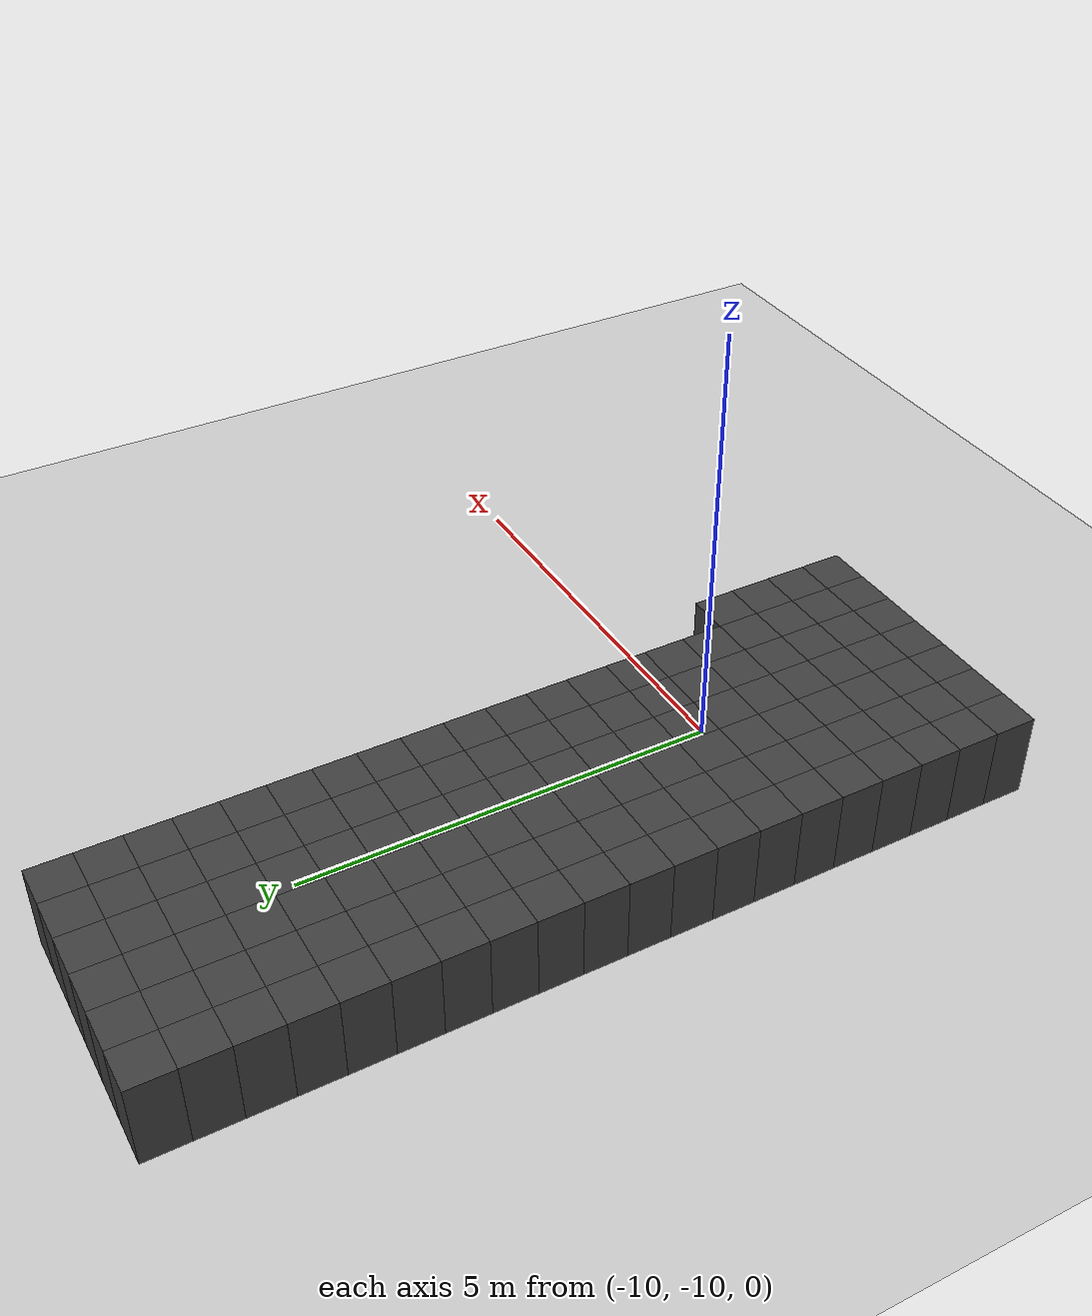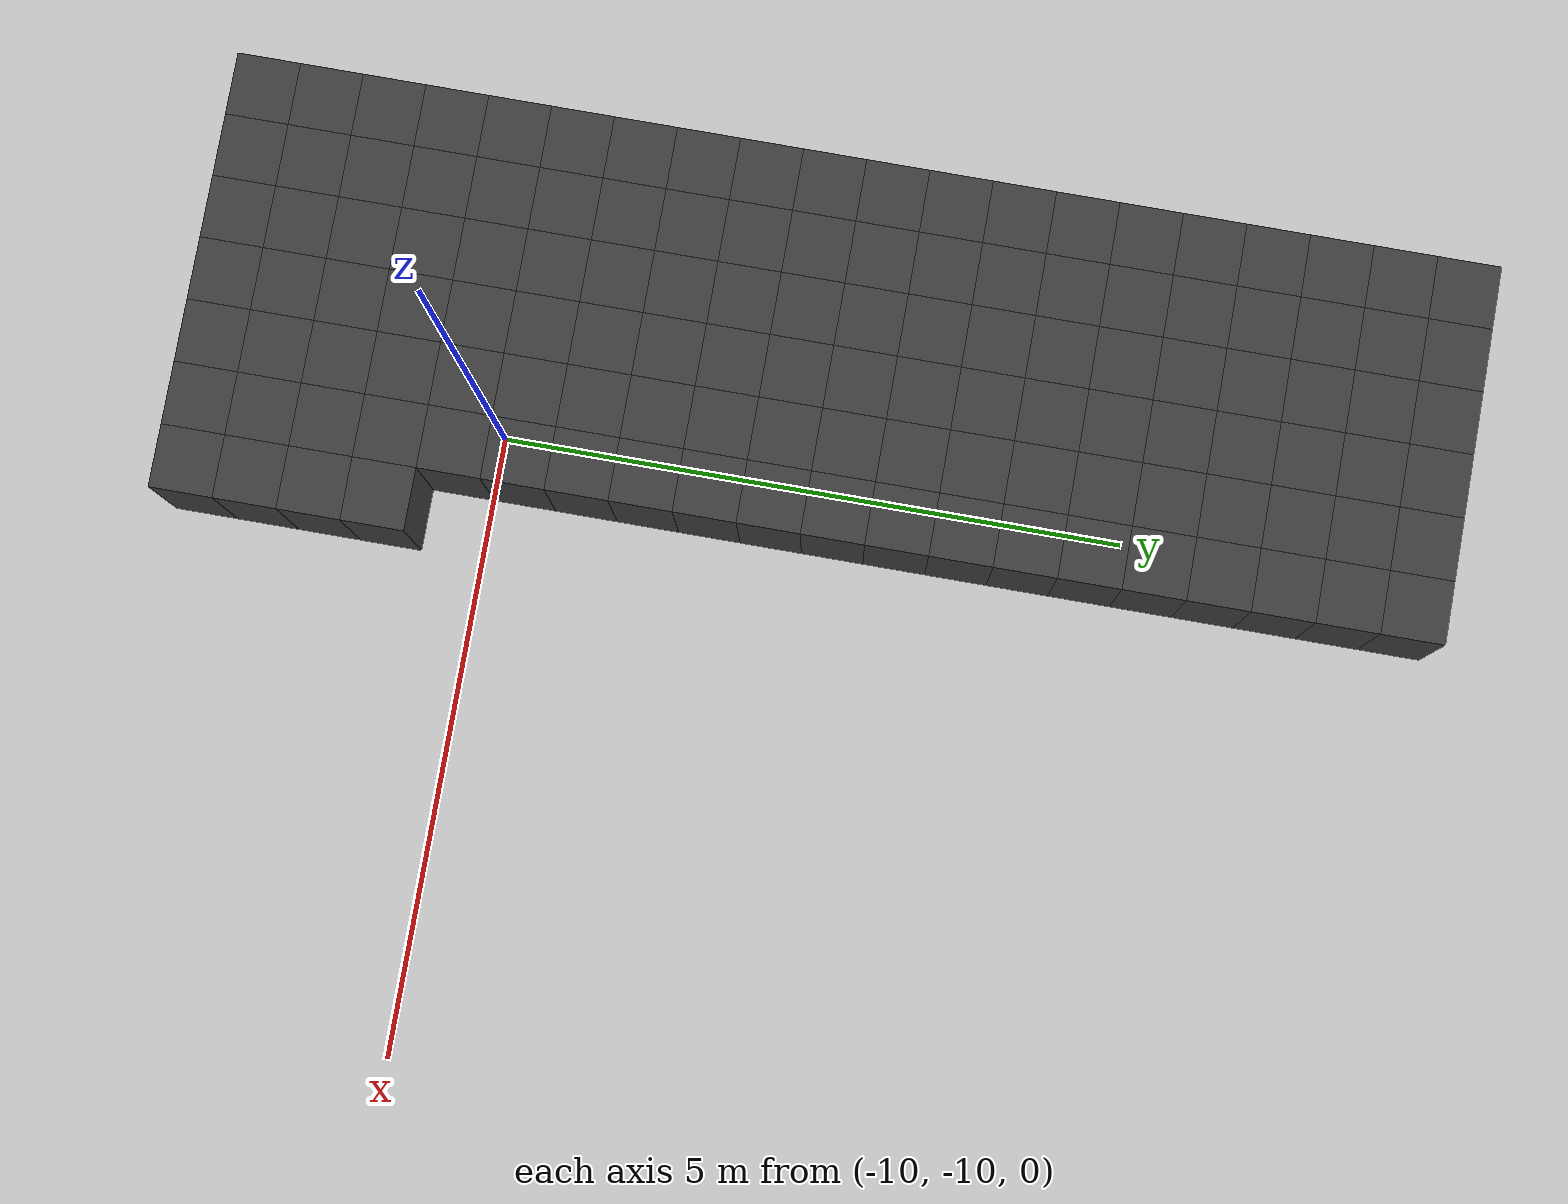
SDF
<sdf version="1.7">
 <world name="map_13994">
  <model name="ground_plane">
   <static>true</static>
   <link name="link">
    <collision name="collision">
     <geometry><plane><normal>0 0 1</normal><size>200 200</size></plane></geometry>
    </collision>
    <visual name="visual">
     <geometry><plane><normal>0 0 1</normal><size>200 200</size></plane></geometry>
     <material><ambient>0.8 0.8 0.8 1</ambient><diffuse>0.8 0.8 0.8 1</diffuse></material>
    </visual>
   </link>
  </model>
  <model name="maze_environment">
   <static>true</static>
   <link name="wall_975">
    <pose>-12.250 -2.750 0.500 0 0 0</pose>
    <collision name="col"><geometry><box><size>0.5 0.5 1.0</size></box></geometry></collision>
    <visual name="vis">
     <geometry><box><size>0.5 0.5 1.0</size></box></geometry>
     <material><ambient>0.15 0.15 0.15 1</ambient><diffuse>0.25 0.25 0.25 1</diffuse></material>
    </visual>
   </link>
   <link name="wall_976">
    <pose>-11.750 -2.750 0.500 0 0 0</pose>
    <collision name="col"><geometry><box><size>0.5 0.5 1.0</size></box></geometry></collision>
    <visual name="vis">
     <geometry><box><size>0.5 0.5 1.0</size></box></geometry>
     <material><ambient>0.15 0.15 0.15 1</ambient><diffuse>0.25 0.25 0.25 1</diffuse></material>
    </visual>
   </link>
   <link name="wall_977">
    <pose>-11.250 -2.750 0.500 0 0 0</pose>
    <collision name="col"><geometry><box><size>0.5 0.5 1.0</size></box></geometry></collision>
    <visual name="vis">
     <geometry><box><size>0.5 0.5 1.0</size></box></geometry>
     <material><ambient>0.15 0.15 0.15 1</ambient><diffuse>0.25 0.25 0.25 1</diffuse></material>
    </visual>
   </link>
   <link name="wall_978">
    <pose>-10.750 -2.750 0.500 0 0 0</pose>
    <collision name="col"><geometry><box><size>0.5 0.5 1.0</size></box></geometry></collision>
    <visual name="vis">
     <geometry><box><size>0.5 0.5 1.0</size></box></geometry>
     <material><ambient>0.15 0.15 0.15 1</ambient><diffuse>0.25 0.25 0.25 1</diffuse></material>
    </visual>
   </link>
   <link name="wall_979">
    <pose>-10.250 -2.750 0.500 0 0 0</pose>
    <collision name="col"><geometry><box><size>0.5 0.5 1.0</size></box></geometry></collision>
    <visual name="vis">
     <geometry><box><size>0.5 0.5 1.0</size></box></geometry>
     <material><ambient>0.15 0.15 0.15 1</ambient><diffuse>0.25 0.25 0.25 1</diffuse></material>
    </visual>
   </link>
   <link name="wall_980">
    <pose>-9.750 -2.750 0.500 0 0 0</pose>
    <collision name="col"><geometry><box><size>0.5 0.5 1.0</size></box></geometry></collision>
    <visual name="vis">
     <geometry><box><size>0.5 0.5 1.0</size></box></geometry>
     <material><ambient>0.15 0.15 0.15 1</ambient><diffuse>0.25 0.25 0.25 1</diffuse></material>
    </visual>
   </link>
   <link name="wall_1016">
    <pose>-12.250 -3.250 0.500 0 0 0</pose>
    <collision name="col"><geometry><box><size>0.5 0.5 1.0</size></box></geometry></collision>
    <visual name="vis">
     <geometry><box><size>0.5 0.5 1.0</size></box></geometry>
     <material><ambient>0.15 0.15 0.15 1</ambient><diffuse>0.25 0.25 0.25 1</diffuse></material>
    </visual>
   </link>
   <link name="wall_1017">
    <pose>-11.750 -3.250 0.500 0 0 0</pose>
    <collision name="col"><geometry><box><size>0.5 0.5 1.0</size></box></geometry></collision>
    <visual name="vis">
     <geometry><box><size>0.5 0.5 1.0</size></box></geometry>
     <material><ambient>0.15 0.15 0.15 1</ambient><diffuse>0.25 0.25 0.25 1</diffuse></material>
    </visual>
   </link>
   <link name="wall_1018">
    <pose>-11.250 -3.250 0.500 0 0 0</pose>
    <collision name="col"><geometry><box><size>0.5 0.5 1.0</size></box></geometry></collision>
    <visual name="vis">
     <geometry><box><size>0.5 0.5 1.0</size></box></geometry>
     <material><ambient>0.15 0.15 0.15 1</ambient><diffuse>0.25 0.25 0.25 1</diffuse></material>
    </visual>
   </link>
   <link name="wall_1019">
    <pose>-10.750 -3.250 0.500 0 0 0</pose>
    <collision name="col"><geometry><box><size>0.5 0.5 1.0</size></box></geometry></collision>
    <visual name="vis">
     <geometry><box><size>0.5 0.5 1.0</size></box></geometry>
     <material><ambient>0.15 0.15 0.15 1</ambient><diffuse>0.25 0.25 0.25 1</diffuse></material>
    </visual>
   </link>
   <link name="wall_1020">
    <pose>-10.250 -3.250 0.500 0 0 0</pose>
    <collision name="col"><geometry><box><size>0.5 0.5 1.0</size></box></geometry></collision>
    <visual name="vis">
     <geometry><box><size>0.5 0.5 1.0</size></box></geometry>
     <material><ambient>0.15 0.15 0.15 1</ambient><diffuse>0.25 0.25 0.25 1</diffuse></material>
    </visual>
   </link>
   <link name="wall_1021">
    <pose>-9.750 -3.250 0.500 0 0 0</pose>
    <collision name="col"><geometry><box><size>0.5 0.5 1.0</size></box></geometry></collision>
    <visual name="vis">
     <geometry><box><size>0.5 0.5 1.0</size></box></geometry>
     <material><ambient>0.15 0.15 0.15 1</ambient><diffuse>0.25 0.25 0.25 1</diffuse></material>
    </visual>
   </link>
   <link name="wall_1057">
    <pose>-12.250 -3.750 0.500 0 0 0</pose>
    <collision name="col"><geometry><box><size>0.5 0.5 1.0</size></box></geometry></collision>
    <visual name="vis">
     <geometry><box><size>0.5 0.5 1.0</size></box></geometry>
     <material><ambient>0.15 0.15 0.15 1</ambient><diffuse>0.25 0.25 0.25 1</diffuse></material>
    </visual>
   </link>
   <link name="wall_1058">
    <pose>-11.750 -3.750 0.500 0 0 0</pose>
    <collision name="col"><geometry><box><size>0.5 0.5 1.0</size></box></geometry></collision>
    <visual name="vis">
     <geometry><box><size>0.5 0.5 1.0</size></box></geometry>
     <material><ambient>0.15 0.15 0.15 1</ambient><diffuse>0.25 0.25 0.25 1</diffuse></material>
    </visual>
   </link>
   <link name="wall_1059">
    <pose>-11.250 -3.750 0.500 0 0 0</pose>
    <collision name="col"><geometry><box><size>0.5 0.5 1.0</size></box></geometry></collision>
    <visual name="vis">
     <geometry><box><size>0.5 0.5 1.0</size></box></geometry>
     <material><ambient>0.15 0.15 0.15 1</ambient><diffuse>0.25 0.25 0.25 1</diffuse></material>
    </visual>
   </link>
   <link name="wall_1060">
    <pose>-10.750 -3.750 0.500 0 0 0</pose>
    <collision name="col"><geometry><box><size>0.5 0.5 1.0</size></box></geometry></collision>
    <visual name="vis">
     <geometry><box><size>0.5 0.5 1.0</size></box></geometry>
     <material><ambient>0.15 0.15 0.15 1</ambient><diffuse>0.25 0.25 0.25 1</diffuse></material>
    </visual>
   </link>
   <link name="wall_1061">
    <pose>-10.250 -3.750 0.500 0 0 0</pose>
    <collision name="col"><geometry><box><size>0.5 0.5 1.0</size></box></geometry></collision>
    <visual name="vis">
     <geometry><box><size>0.5 0.5 1.0</size></box></geometry>
     <material><ambient>0.15 0.15 0.15 1</ambient><diffuse>0.25 0.25 0.25 1</diffuse></material>
    </visual>
   </link>
   <link name="wall_1062">
    <pose>-9.750 -3.750 0.500 0 0 0</pose>
    <collision name="col"><geometry><box><size>0.5 0.5 1.0</size></box></geometry></collision>
    <visual name="vis">
     <geometry><box><size>0.5 0.5 1.0</size></box></geometry>
     <material><ambient>0.15 0.15 0.15 1</ambient><diffuse>0.25 0.25 0.25 1</diffuse></material>
    </visual>
   </link>
   <link name="wall_1092">
    <pose>-12.250 -4.250 0.500 0 0 0</pose>
    <collision name="col"><geometry><box><size>0.5 0.5 1.0</size></box></geometry></collision>
    <visual name="vis">
     <geometry><box><size>0.5 0.5 1.0</size></box></geometry>
     <material><ambient>0.15 0.15 0.15 1</ambient><diffuse>0.25 0.25 0.25 1</diffuse></material>
    </visual>
   </link>
   <link name="wall_1093">
    <pose>-11.750 -4.250 0.500 0 0 0</pose>
    <collision name="col"><geometry><box><size>0.5 0.5 1.0</size></box></geometry></collision>
    <visual name="vis">
     <geometry><box><size>0.5 0.5 1.0</size></box></geometry>
     <material><ambient>0.15 0.15 0.15 1</ambient><diffuse>0.25 0.25 0.25 1</diffuse></material>
    </visual>
   </link>
   <link name="wall_1094">
    <pose>-11.250 -4.250 0.500 0 0 0</pose>
    <collision name="col"><geometry><box><size>0.5 0.5 1.0</size></box></geometry></collision>
    <visual name="vis">
     <geometry><box><size>0.5 0.5 1.0</size></box></geometry>
     <material><ambient>0.15 0.15 0.15 1</ambient><diffuse>0.25 0.25 0.25 1</diffuse></material>
    </visual>
   </link>
   <link name="wall_1095">
    <pose>-10.750 -4.250 0.500 0 0 0</pose>
    <collision name="col"><geometry><box><size>0.5 0.5 1.0</size></box></geometry></collision>
    <visual name="vis">
     <geometry><box><size>0.5 0.5 1.0</size></box></geometry>
     <material><ambient>0.15 0.15 0.15 1</ambient><diffuse>0.25 0.25 0.25 1</diffuse></material>
    </visual>
   </link>
   <link name="wall_1096">
    <pose>-10.250 -4.250 0.500 0 0 0</pose>
    <collision name="col"><geometry><box><size>0.5 0.5 1.0</size></box></geometry></collision>
    <visual name="vis">
     <geometry><box><size>0.5 0.5 1.0</size></box></geometry>
     <material><ambient>0.15 0.15 0.15 1</ambient><diffuse>0.25 0.25 0.25 1</diffuse></material>
    </visual>
   </link>
   <link name="wall_1097">
    <pose>-9.750 -4.250 0.500 0 0 0</pose>
    <collision name="col"><geometry><box><size>0.5 0.5 1.0</size></box></geometry></collision>
    <visual name="vis">
     <geometry><box><size>0.5 0.5 1.0</size></box></geometry>
     <material><ambient>0.15 0.15 0.15 1</ambient><diffuse>0.25 0.25 0.25 1</diffuse></material>
    </visual>
   </link>
   <link name="wall_1127">
    <pose>-12.250 -4.750 0.500 0 0 0</pose>
    <collision name="col"><geometry><box><size>0.5 0.5 1.0</size></box></geometry></collision>
    <visual name="vis">
     <geometry><box><size>0.5 0.5 1.0</size></box></geometry>
     <material><ambient>0.15 0.15 0.15 1</ambient><diffuse>0.25 0.25 0.25 1</diffuse></material>
    </visual>
   </link>
   <link name="wall_1128">
    <pose>-11.750 -4.750 0.500 0 0 0</pose>
    <collision name="col"><geometry><box><size>0.5 0.5 1.0</size></box></geometry></collision>
    <visual name="vis">
     <geometry><box><size>0.5 0.5 1.0</size></box></geometry>
     <material><ambient>0.15 0.15 0.15 1</ambient><diffuse>0.25 0.25 0.25 1</diffuse></material>
    </visual>
   </link>
   <link name="wall_1129">
    <pose>-11.250 -4.750 0.500 0 0 0</pose>
    <collision name="col"><geometry><box><size>0.5 0.5 1.0</size></box></geometry></collision>
    <visual name="vis">
     <geometry><box><size>0.5 0.5 1.0</size></box></geometry>
     <material><ambient>0.15 0.15 0.15 1</ambient><diffuse>0.25 0.25 0.25 1</diffuse></material>
    </visual>
   </link>
   <link name="wall_1130">
    <pose>-10.750 -4.750 0.500 0 0 0</pose>
    <collision name="col"><geometry><box><size>0.5 0.5 1.0</size></box></geometry></collision>
    <visual name="vis">
     <geometry><box><size>0.5 0.5 1.0</size></box></geometry>
     <material><ambient>0.15 0.15 0.15 1</ambient><diffuse>0.25 0.25 0.25 1</diffuse></material>
    </visual>
   </link>
   <link name="wall_1131">
    <pose>-10.250 -4.750 0.500 0 0 0</pose>
    <collision name="col"><geometry><box><size>0.5 0.5 1.0</size></box></geometry></collision>
    <visual name="vis">
     <geometry><box><size>0.5 0.5 1.0</size></box></geometry>
     <material><ambient>0.15 0.15 0.15 1</ambient><diffuse>0.25 0.25 0.25 1</diffuse></material>
    </visual>
   </link>
   <link name="wall_1132">
    <pose>-9.750 -4.750 0.500 0 0 0</pose>
    <collision name="col"><geometry><box><size>0.5 0.5 1.0</size></box></geometry></collision>
    <visual name="vis">
     <geometry><box><size>0.5 0.5 1.0</size></box></geometry>
     <material><ambient>0.15 0.15 0.15 1</ambient><diffuse>0.25 0.25 0.25 1</diffuse></material>
    </visual>
   </link>
   <link name="wall_1157">
    <pose>-12.250 -5.250 0.500 0 0 0</pose>
    <collision name="col"><geometry><box><size>0.5 0.5 1.0</size></box></geometry></collision>
    <visual name="vis">
     <geometry><box><size>0.5 0.5 1.0</size></box></geometry>
     <material><ambient>0.15 0.15 0.15 1</ambient><diffuse>0.25 0.25 0.25 1</diffuse></material>
    </visual>
   </link>
   <link name="wall_1158">
    <pose>-11.750 -5.250 0.500 0 0 0</pose>
    <collision name="col"><geometry><box><size>0.5 0.5 1.0</size></box></geometry></collision>
    <visual name="vis">
     <geometry><box><size>0.5 0.5 1.0</size></box></geometry>
     <material><ambient>0.15 0.15 0.15 1</ambient><diffuse>0.25 0.25 0.25 1</diffuse></material>
    </visual>
   </link>
   <link name="wall_1159">
    <pose>-11.250 -5.250 0.500 0 0 0</pose>
    <collision name="col"><geometry><box><size>0.5 0.5 1.0</size></box></geometry></collision>
    <visual name="vis">
     <geometry><box><size>0.5 0.5 1.0</size></box></geometry>
     <material><ambient>0.15 0.15 0.15 1</ambient><diffuse>0.25 0.25 0.25 1</diffuse></material>
    </visual>
   </link>
   <link name="wall_1160">
    <pose>-10.750 -5.250 0.500 0 0 0</pose>
    <collision name="col"><geometry><box><size>0.5 0.5 1.0</size></box></geometry></collision>
    <visual name="vis">
     <geometry><box><size>0.5 0.5 1.0</size></box></geometry>
     <material><ambient>0.15 0.15 0.15 1</ambient><diffuse>0.25 0.25 0.25 1</diffuse></material>
    </visual>
   </link>
   <link name="wall_1161">
    <pose>-10.250 -5.250 0.500 0 0 0</pose>
    <collision name="col"><geometry><box><size>0.5 0.5 1.0</size></box></geometry></collision>
    <visual name="vis">
     <geometry><box><size>0.5 0.5 1.0</size></box></geometry>
     <material><ambient>0.15 0.15 0.15 1</ambient><diffuse>0.25 0.25 0.25 1</diffuse></material>
    </visual>
   </link>
   <link name="wall_1162">
    <pose>-9.750 -5.250 0.500 0 0 0</pose>
    <collision name="col"><geometry><box><size>0.5 0.5 1.0</size></box></geometry></collision>
    <visual name="vis">
     <geometry><box><size>0.5 0.5 1.0</size></box></geometry>
     <material><ambient>0.15 0.15 0.15 1</ambient><diffuse>0.25 0.25 0.25 1</diffuse></material>
    </visual>
   </link>
   <link name="wall_1192">
    <pose>-12.250 -5.750 0.500 0 0 0</pose>
    <collision name="col"><geometry><box><size>0.5 0.5 1.0</size></box></geometry></collision>
    <visual name="vis">
     <geometry><box><size>0.5 0.5 1.0</size></box></geometry>
     <material><ambient>0.15 0.15 0.15 1</ambient><diffuse>0.25 0.25 0.25 1</diffuse></material>
    </visual>
   </link>
   <link name="wall_1193">
    <pose>-11.750 -5.750 0.500 0 0 0</pose>
    <collision name="col"><geometry><box><size>0.5 0.5 1.0</size></box></geometry></collision>
    <visual name="vis">
     <geometry><box><size>0.5 0.5 1.0</size></box></geometry>
     <material><ambient>0.15 0.15 0.15 1</ambient><diffuse>0.25 0.25 0.25 1</diffuse></material>
    </visual>
   </link>
   <link name="wall_1194">
    <pose>-11.250 -5.750 0.500 0 0 0</pose>
    <collision name="col"><geometry><box><size>0.5 0.5 1.0</size></box></geometry></collision>
    <visual name="vis">
     <geometry><box><size>0.5 0.5 1.0</size></box></geometry>
     <material><ambient>0.15 0.15 0.15 1</ambient><diffuse>0.25 0.25 0.25 1</diffuse></material>
    </visual>
   </link>
   <link name="wall_1195">
    <pose>-10.750 -5.750 0.500 0 0 0</pose>
    <collision name="col"><geometry><box><size>0.5 0.5 1.0</size></box></geometry></collision>
    <visual name="vis">
     <geometry><box><size>0.5 0.5 1.0</size></box></geometry>
     <material><ambient>0.15 0.15 0.15 1</ambient><diffuse>0.25 0.25 0.25 1</diffuse></material>
    </visual>
   </link>
   <link name="wall_1196">
    <pose>-10.250 -5.750 0.500 0 0 0</pose>
    <collision name="col"><geometry><box><size>0.5 0.5 1.0</size></box></geometry></collision>
    <visual name="vis">
     <geometry><box><size>0.5 0.5 1.0</size></box></geometry>
     <material><ambient>0.15 0.15 0.15 1</ambient><diffuse>0.25 0.25 0.25 1</diffuse></material>
    </visual>
   </link>
   <link name="wall_1197">
    <pose>-9.750 -5.750 0.500 0 0 0</pose>
    <collision name="col"><geometry><box><size>0.5 0.5 1.0</size></box></geometry></collision>
    <visual name="vis">
     <geometry><box><size>0.5 0.5 1.0</size></box></geometry>
     <material><ambient>0.15 0.15 0.15 1</ambient><diffuse>0.25 0.25 0.25 1</diffuse></material>
    </visual>
   </link>
   <link name="wall_1225">
    <pose>-12.250 -6.250 0.500 0 0 0</pose>
    <collision name="col"><geometry><box><size>0.5 0.5 1.0</size></box></geometry></collision>
    <visual name="vis">
     <geometry><box><size>0.5 0.5 1.0</size></box></geometry>
     <material><ambient>0.15 0.15 0.15 1</ambient><diffuse>0.25 0.25 0.25 1</diffuse></material>
    </visual>
   </link>
   <link name="wall_1226">
    <pose>-11.750 -6.250 0.500 0 0 0</pose>
    <collision name="col"><geometry><box><size>0.5 0.5 1.0</size></box></geometry></collision>
    <visual name="vis">
     <geometry><box><size>0.5 0.5 1.0</size></box></geometry>
     <material><ambient>0.15 0.15 0.15 1</ambient><diffuse>0.25 0.25 0.25 1</diffuse></material>
    </visual>
   </link>
   <link name="wall_1227">
    <pose>-11.250 -6.250 0.500 0 0 0</pose>
    <collision name="col"><geometry><box><size>0.5 0.5 1.0</size></box></geometry></collision>
    <visual name="vis">
     <geometry><box><size>0.5 0.5 1.0</size></box></geometry>
     <material><ambient>0.15 0.15 0.15 1</ambient><diffuse>0.25 0.25 0.25 1</diffuse></material>
    </visual>
   </link>
   <link name="wall_1228">
    <pose>-10.750 -6.250 0.500 0 0 0</pose>
    <collision name="col"><geometry><box><size>0.5 0.5 1.0</size></box></geometry></collision>
    <visual name="vis">
     <geometry><box><size>0.5 0.5 1.0</size></box></geometry>
     <material><ambient>0.15 0.15 0.15 1</ambient><diffuse>0.25 0.25 0.25 1</diffuse></material>
    </visual>
   </link>
   <link name="wall_1229">
    <pose>-10.250 -6.250 0.500 0 0 0</pose>
    <collision name="col"><geometry><box><size>0.5 0.5 1.0</size></box></geometry></collision>
    <visual name="vis">
     <geometry><box><size>0.5 0.5 1.0</size></box></geometry>
     <material><ambient>0.15 0.15 0.15 1</ambient><diffuse>0.25 0.25 0.25 1</diffuse></material>
    </visual>
   </link>
   <link name="wall_1230">
    <pose>-9.750 -6.250 0.500 0 0 0</pose>
    <collision name="col"><geometry><box><size>0.5 0.5 1.0</size></box></geometry></collision>
    <visual name="vis">
     <geometry><box><size>0.5 0.5 1.0</size></box></geometry>
     <material><ambient>0.15 0.15 0.15 1</ambient><diffuse>0.25 0.25 0.25 1</diffuse></material>
    </visual>
   </link>
   <link name="wall_1258">
    <pose>-12.250 -6.750 0.500 0 0 0</pose>
    <collision name="col"><geometry><box><size>0.5 0.5 1.0</size></box></geometry></collision>
    <visual name="vis">
     <geometry><box><size>0.5 0.5 1.0</size></box></geometry>
     <material><ambient>0.15 0.15 0.15 1</ambient><diffuse>0.25 0.25 0.25 1</diffuse></material>
    </visual>
   </link>
   <link name="wall_1259">
    <pose>-11.750 -6.750 0.500 0 0 0</pose>
    <collision name="col"><geometry><box><size>0.5 0.5 1.0</size></box></geometry></collision>
    <visual name="vis">
     <geometry><box><size>0.5 0.5 1.0</size></box></geometry>
     <material><ambient>0.15 0.15 0.15 1</ambient><diffuse>0.25 0.25 0.25 1</diffuse></material>
    </visual>
   </link>
   <link name="wall_1260">
    <pose>-11.250 -6.750 0.500 0 0 0</pose>
    <collision name="col"><geometry><box><size>0.5 0.5 1.0</size></box></geometry></collision>
    <visual name="vis">
     <geometry><box><size>0.5 0.5 1.0</size></box></geometry>
     <material><ambient>0.15 0.15 0.15 1</ambient><diffuse>0.25 0.25 0.25 1</diffuse></material>
    </visual>
   </link>
   <link name="wall_1261">
    <pose>-10.750 -6.750 0.500 0 0 0</pose>
    <collision name="col"><geometry><box><size>0.5 0.5 1.0</size></box></geometry></collision>
    <visual name="vis">
     <geometry><box><size>0.5 0.5 1.0</size></box></geometry>
     <material><ambient>0.15 0.15 0.15 1</ambient><diffuse>0.25 0.25 0.25 1</diffuse></material>
    </visual>
   </link>
   <link name="wall_1262">
    <pose>-10.250 -6.750 0.500 0 0 0</pose>
    <collision name="col"><geometry><box><size>0.5 0.5 1.0</size></box></geometry></collision>
    <visual name="vis">
     <geometry><box><size>0.5 0.5 1.0</size></box></geometry>
     <material><ambient>0.15 0.15 0.15 1</ambient><diffuse>0.25 0.25 0.25 1</diffuse></material>
    </visual>
   </link>
   <link name="wall_1263">
    <pose>-9.750 -6.750 0.500 0 0 0</pose>
    <collision name="col"><geometry><box><size>0.5 0.5 1.0</size></box></geometry></collision>
    <visual name="vis">
     <geometry><box><size>0.5 0.5 1.0</size></box></geometry>
     <material><ambient>0.15 0.15 0.15 1</ambient><diffuse>0.25 0.25 0.25 1</diffuse></material>
    </visual>
   </link>
   <link name="wall_1295">
    <pose>-12.250 -7.250 0.500 0 0 0</pose>
    <collision name="col"><geometry><box><size>0.5 0.5 1.0</size></box></geometry></collision>
    <visual name="vis">
     <geometry><box><size>0.5 0.5 1.0</size></box></geometry>
     <material><ambient>0.15 0.15 0.15 1</ambient><diffuse>0.25 0.25 0.25 1</diffuse></material>
    </visual>
   </link>
   <link name="wall_1296">
    <pose>-11.750 -7.250 0.500 0 0 0</pose>
    <collision name="col"><geometry><box><size>0.5 0.5 1.0</size></box></geometry></collision>
    <visual name="vis">
     <geometry><box><size>0.5 0.5 1.0</size></box></geometry>
     <material><ambient>0.15 0.15 0.15 1</ambient><diffuse>0.25 0.25 0.25 1</diffuse></material>
    </visual>
   </link>
   <link name="wall_1297">
    <pose>-11.250 -7.250 0.500 0 0 0</pose>
    <collision name="col"><geometry><box><size>0.5 0.5 1.0</size></box></geometry></collision>
    <visual name="vis">
     <geometry><box><size>0.5 0.5 1.0</size></box></geometry>
     <material><ambient>0.15 0.15 0.15 1</ambient><diffuse>0.25 0.25 0.25 1</diffuse></material>
    </visual>
   </link>
   <link name="wall_1298">
    <pose>-10.750 -7.250 0.500 0 0 0</pose>
    <collision name="col"><geometry><box><size>0.5 0.5 1.0</size></box></geometry></collision>
    <visual name="vis">
     <geometry><box><size>0.5 0.5 1.0</size></box></geometry>
     <material><ambient>0.15 0.15 0.15 1</ambient><diffuse>0.25 0.25 0.25 1</diffuse></material>
    </visual>
   </link>
   <link name="wall_1299">
    <pose>-10.250 -7.250 0.500 0 0 0</pose>
    <collision name="col"><geometry><box><size>0.5 0.5 1.0</size></box></geometry></collision>
    <visual name="vis">
     <geometry><box><size>0.5 0.5 1.0</size></box></geometry>
     <material><ambient>0.15 0.15 0.15 1</ambient><diffuse>0.25 0.25 0.25 1</diffuse></material>
    </visual>
   </link>
   <link name="wall_1300">
    <pose>-9.750 -7.250 0.500 0 0 0</pose>
    <collision name="col"><geometry><box><size>0.5 0.5 1.0</size></box></geometry></collision>
    <visual name="vis">
     <geometry><box><size>0.5 0.5 1.0</size></box></geometry>
     <material><ambient>0.15 0.15 0.15 1</ambient><diffuse>0.25 0.25 0.25 1</diffuse></material>
    </visual>
   </link>
   <link name="wall_1332">
    <pose>-12.250 -7.750 0.500 0 0 0</pose>
    <collision name="col"><geometry><box><size>0.5 0.5 1.0</size></box></geometry></collision>
    <visual name="vis">
     <geometry><box><size>0.5 0.5 1.0</size></box></geometry>
     <material><ambient>0.15 0.15 0.15 1</ambient><diffuse>0.25 0.25 0.25 1</diffuse></material>
    </visual>
   </link>
   <link name="wall_1333">
    <pose>-11.750 -7.750 0.500 0 0 0</pose>
    <collision name="col"><geometry><box><size>0.5 0.5 1.0</size></box></geometry></collision>
    <visual name="vis">
     <geometry><box><size>0.5 0.5 1.0</size></box></geometry>
     <material><ambient>0.15 0.15 0.15 1</ambient><diffuse>0.25 0.25 0.25 1</diffuse></material>
    </visual>
   </link>
   <link name="wall_1334">
    <pose>-11.250 -7.750 0.500 0 0 0</pose>
    <collision name="col"><geometry><box><size>0.5 0.5 1.0</size></box></geometry></collision>
    <visual name="vis">
     <geometry><box><size>0.5 0.5 1.0</size></box></geometry>
     <material><ambient>0.15 0.15 0.15 1</ambient><diffuse>0.25 0.25 0.25 1</diffuse></material>
    </visual>
   </link>
   <link name="wall_1335">
    <pose>-10.750 -7.750 0.500 0 0 0</pose>
    <collision name="col"><geometry><box><size>0.5 0.5 1.0</size></box></geometry></collision>
    <visual name="vis">
     <geometry><box><size>0.5 0.5 1.0</size></box></geometry>
     <material><ambient>0.15 0.15 0.15 1</ambient><diffuse>0.25 0.25 0.25 1</diffuse></material>
    </visual>
   </link>
   <link name="wall_1336">
    <pose>-10.250 -7.750 0.500 0 0 0</pose>
    <collision name="col"><geometry><box><size>0.5 0.5 1.0</size></box></geometry></collision>
    <visual name="vis">
     <geometry><box><size>0.5 0.5 1.0</size></box></geometry>
     <material><ambient>0.15 0.15 0.15 1</ambient><diffuse>0.25 0.25 0.25 1</diffuse></material>
    </visual>
   </link>
   <link name="wall_1337">
    <pose>-9.750 -7.750 0.500 0 0 0</pose>
    <collision name="col"><geometry><box><size>0.5 0.5 1.0</size></box></geometry></collision>
    <visual name="vis">
     <geometry><box><size>0.5 0.5 1.0</size></box></geometry>
     <material><ambient>0.15 0.15 0.15 1</ambient><diffuse>0.25 0.25 0.25 1</diffuse></material>
    </visual>
   </link>
   <link name="wall_1371">
    <pose>-12.250 -8.250 0.500 0 0 0</pose>
    <collision name="col"><geometry><box><size>0.5 0.5 1.0</size></box></geometry></collision>
    <visual name="vis">
     <geometry><box><size>0.5 0.5 1.0</size></box></geometry>
     <material><ambient>0.15 0.15 0.15 1</ambient><diffuse>0.25 0.25 0.25 1</diffuse></material>
    </visual>
   </link>
   <link name="wall_1372">
    <pose>-11.750 -8.250 0.500 0 0 0</pose>
    <collision name="col"><geometry><box><size>0.5 0.5 1.0</size></box></geometry></collision>
    <visual name="vis">
     <geometry><box><size>0.5 0.5 1.0</size></box></geometry>
     <material><ambient>0.15 0.15 0.15 1</ambient><diffuse>0.25 0.25 0.25 1</diffuse></material>
    </visual>
   </link>
   <link name="wall_1373">
    <pose>-11.250 -8.250 0.500 0 0 0</pose>
    <collision name="col"><geometry><box><size>0.5 0.5 1.0</size></box></geometry></collision>
    <visual name="vis">
     <geometry><box><size>0.5 0.5 1.0</size></box></geometry>
     <material><ambient>0.15 0.15 0.15 1</ambient><diffuse>0.25 0.25 0.25 1</diffuse></material>
    </visual>
   </link>
   <link name="wall_1374">
    <pose>-10.750 -8.250 0.500 0 0 0</pose>
    <collision name="col"><geometry><box><size>0.5 0.5 1.0</size></box></geometry></collision>
    <visual name="vis">
     <geometry><box><size>0.5 0.5 1.0</size></box></geometry>
     <material><ambient>0.15 0.15 0.15 1</ambient><diffuse>0.25 0.25 0.25 1</diffuse></material>
    </visual>
   </link>
   <link name="wall_1375">
    <pose>-10.250 -8.250 0.500 0 0 0</pose>
    <collision name="col"><geometry><box><size>0.5 0.5 1.0</size></box></geometry></collision>
    <visual name="vis">
     <geometry><box><size>0.5 0.5 1.0</size></box></geometry>
     <material><ambient>0.15 0.15 0.15 1</ambient><diffuse>0.25 0.25 0.25 1</diffuse></material>
    </visual>
   </link>
   <link name="wall_1376">
    <pose>-9.750 -8.250 0.500 0 0 0</pose>
    <collision name="col"><geometry><box><size>0.5 0.5 1.0</size></box></geometry></collision>
    <visual name="vis">
     <geometry><box><size>0.5 0.5 1.0</size></box></geometry>
     <material><ambient>0.15 0.15 0.15 1</ambient><diffuse>0.25 0.25 0.25 1</diffuse></material>
    </visual>
   </link>
   <link name="wall_1414">
    <pose>-12.250 -8.750 0.500 0 0 0</pose>
    <collision name="col"><geometry><box><size>0.5 0.5 1.0</size></box></geometry></collision>
    <visual name="vis">
     <geometry><box><size>0.5 0.5 1.0</size></box></geometry>
     <material><ambient>0.15 0.15 0.15 1</ambient><diffuse>0.25 0.25 0.25 1</diffuse></material>
    </visual>
   </link>
   <link name="wall_1415">
    <pose>-11.750 -8.750 0.500 0 0 0</pose>
    <collision name="col"><geometry><box><size>0.5 0.5 1.0</size></box></geometry></collision>
    <visual name="vis">
     <geometry><box><size>0.5 0.5 1.0</size></box></geometry>
     <material><ambient>0.15 0.15 0.15 1</ambient><diffuse>0.25 0.25 0.25 1</diffuse></material>
    </visual>
   </link>
   <link name="wall_1416">
    <pose>-11.250 -8.750 0.500 0 0 0</pose>
    <collision name="col"><geometry><box><size>0.5 0.5 1.0</size></box></geometry></collision>
    <visual name="vis">
     <geometry><box><size>0.5 0.5 1.0</size></box></geometry>
     <material><ambient>0.15 0.15 0.15 1</ambient><diffuse>0.25 0.25 0.25 1</diffuse></material>
    </visual>
   </link>
   <link name="wall_1417">
    <pose>-10.750 -8.750 0.500 0 0 0</pose>
    <collision name="col"><geometry><box><size>0.5 0.5 1.0</size></box></geometry></collision>
    <visual name="vis">
     <geometry><box><size>0.5 0.5 1.0</size></box></geometry>
     <material><ambient>0.15 0.15 0.15 1</ambient><diffuse>0.25 0.25 0.25 1</diffuse></material>
    </visual>
   </link>
   <link name="wall_1418">
    <pose>-10.250 -8.750 0.500 0 0 0</pose>
    <collision name="col"><geometry><box><size>0.5 0.5 1.0</size></box></geometry></collision>
    <visual name="vis">
     <geometry><box><size>0.5 0.5 1.0</size></box></geometry>
     <material><ambient>0.15 0.15 0.15 1</ambient><diffuse>0.25 0.25 0.25 1</diffuse></material>
    </visual>
   </link>
   <link name="wall_1419">
    <pose>-9.750 -8.750 0.500 0 0 0</pose>
    <collision name="col"><geometry><box><size>0.5 0.5 1.0</size></box></geometry></collision>
    <visual name="vis">
     <geometry><box><size>0.5 0.5 1.0</size></box></geometry>
     <material><ambient>0.15 0.15 0.15 1</ambient><diffuse>0.25 0.25 0.25 1</diffuse></material>
    </visual>
   </link>
   <link name="wall_1457">
    <pose>-12.250 -9.250 0.500 0 0 0</pose>
    <collision name="col"><geometry><box><size>0.5 0.5 1.0</size></box></geometry></collision>
    <visual name="vis">
     <geometry><box><size>0.5 0.5 1.0</size></box></geometry>
     <material><ambient>0.15 0.15 0.15 1</ambient><diffuse>0.25 0.25 0.25 1</diffuse></material>
    </visual>
   </link>
   <link name="wall_1458">
    <pose>-11.750 -9.250 0.500 0 0 0</pose>
    <collision name="col"><geometry><box><size>0.5 0.5 1.0</size></box></geometry></collision>
    <visual name="vis">
     <geometry><box><size>0.5 0.5 1.0</size></box></geometry>
     <material><ambient>0.15 0.15 0.15 1</ambient><diffuse>0.25 0.25 0.25 1</diffuse></material>
    </visual>
   </link>
   <link name="wall_1459">
    <pose>-11.250 -9.250 0.500 0 0 0</pose>
    <collision name="col"><geometry><box><size>0.5 0.5 1.0</size></box></geometry></collision>
    <visual name="vis">
     <geometry><box><size>0.5 0.5 1.0</size></box></geometry>
     <material><ambient>0.15 0.15 0.15 1</ambient><diffuse>0.25 0.25 0.25 1</diffuse></material>
    </visual>
   </link>
   <link name="wall_1460">
    <pose>-10.750 -9.250 0.500 0 0 0</pose>
    <collision name="col"><geometry><box><size>0.5 0.5 1.0</size></box></geometry></collision>
    <visual name="vis">
     <geometry><box><size>0.5 0.5 1.0</size></box></geometry>
     <material><ambient>0.15 0.15 0.15 1</ambient><diffuse>0.25 0.25 0.25 1</diffuse></material>
    </visual>
   </link>
   <link name="wall_1461">
    <pose>-10.250 -9.250 0.500 0 0 0</pose>
    <collision name="col"><geometry><box><size>0.5 0.5 1.0</size></box></geometry></collision>
    <visual name="vis">
     <geometry><box><size>0.5 0.5 1.0</size></box></geometry>
     <material><ambient>0.15 0.15 0.15 1</ambient><diffuse>0.25 0.25 0.25 1</diffuse></material>
    </visual>
   </link>
   <link name="wall_1462">
    <pose>-9.750 -9.250 0.500 0 0 0</pose>
    <collision name="col"><geometry><box><size>0.5 0.5 1.0</size></box></geometry></collision>
    <visual name="vis">
     <geometry><box><size>0.5 0.5 1.0</size></box></geometry>
     <material><ambient>0.15 0.15 0.15 1</ambient><diffuse>0.25 0.25 0.25 1</diffuse></material>
    </visual>
   </link>
   <link name="wall_1500">
    <pose>-12.250 -9.750 0.500 0 0 0</pose>
    <collision name="col"><geometry><box><size>0.5 0.5 1.0</size></box></geometry></collision>
    <visual name="vis">
     <geometry><box><size>0.5 0.5 1.0</size></box></geometry>
     <material><ambient>0.15 0.15 0.15 1</ambient><diffuse>0.25 0.25 0.25 1</diffuse></material>
    </visual>
   </link>
   <link name="wall_1501">
    <pose>-11.750 -9.750 0.500 0 0 0</pose>
    <collision name="col"><geometry><box><size>0.5 0.5 1.0</size></box></geometry></collision>
    <visual name="vis">
     <geometry><box><size>0.5 0.5 1.0</size></box></geometry>
     <material><ambient>0.15 0.15 0.15 1</ambient><diffuse>0.25 0.25 0.25 1</diffuse></material>
    </visual>
   </link>
   <link name="wall_1502">
    <pose>-11.250 -9.750 0.500 0 0 0</pose>
    <collision name="col"><geometry><box><size>0.5 0.5 1.0</size></box></geometry></collision>
    <visual name="vis">
     <geometry><box><size>0.5 0.5 1.0</size></box></geometry>
     <material><ambient>0.15 0.15 0.15 1</ambient><diffuse>0.25 0.25 0.25 1</diffuse></material>
    </visual>
   </link>
   <link name="wall_1503">
    <pose>-10.750 -9.750 0.500 0 0 0</pose>
    <collision name="col"><geometry><box><size>0.5 0.5 1.0</size></box></geometry></collision>
    <visual name="vis">
     <geometry><box><size>0.5 0.5 1.0</size></box></geometry>
     <material><ambient>0.15 0.15 0.15 1</ambient><diffuse>0.25 0.25 0.25 1</diffuse></material>
    </visual>
   </link>
   <link name="wall_1504">
    <pose>-10.250 -9.750 0.500 0 0 0</pose>
    <collision name="col"><geometry><box><size>0.5 0.5 1.0</size></box></geometry></collision>
    <visual name="vis">
     <geometry><box><size>0.5 0.5 1.0</size></box></geometry>
     <material><ambient>0.15 0.15 0.15 1</ambient><diffuse>0.25 0.25 0.25 1</diffuse></material>
    </visual>
   </link>
   <link name="wall_1505">
    <pose>-9.750 -9.750 0.500 0 0 0</pose>
    <collision name="col"><geometry><box><size>0.5 0.5 1.0</size></box></geometry></collision>
    <visual name="vis">
     <geometry><box><size>0.5 0.5 1.0</size></box></geometry>
     <material><ambient>0.15 0.15 0.15 1</ambient><diffuse>0.25 0.25 0.25 1</diffuse></material>
    </visual>
   </link>
   <link name="wall_1536">
    <pose>-12.250 -10.250 0.500 0 0 0</pose>
    <collision name="col"><geometry><box><size>0.5 0.5 1.0</size></box></geometry></collision>
    <visual name="vis">
     <geometry><box><size>0.5 0.5 1.0</size></box></geometry>
     <material><ambient>0.15 0.15 0.15 1</ambient><diffuse>0.25 0.25 0.25 1</diffuse></material>
    </visual>
   </link>
   <link name="wall_1537">
    <pose>-11.750 -10.250 0.500 0 0 0</pose>
    <collision name="col"><geometry><box><size>0.5 0.5 1.0</size></box></geometry></collision>
    <visual name="vis">
     <geometry><box><size>0.5 0.5 1.0</size></box></geometry>
     <material><ambient>0.15 0.15 0.15 1</ambient><diffuse>0.25 0.25 0.25 1</diffuse></material>
    </visual>
   </link>
   <link name="wall_1538">
    <pose>-11.250 -10.250 0.500 0 0 0</pose>
    <collision name="col"><geometry><box><size>0.5 0.5 1.0</size></box></geometry></collision>
    <visual name="vis">
     <geometry><box><size>0.5 0.5 1.0</size></box></geometry>
     <material><ambient>0.15 0.15 0.15 1</ambient><diffuse>0.25 0.25 0.25 1</diffuse></material>
    </visual>
   </link>
   <link name="wall_1539">
    <pose>-10.750 -10.250 0.500 0 0 0</pose>
    <collision name="col"><geometry><box><size>0.5 0.5 1.0</size></box></geometry></collision>
    <visual name="vis">
     <geometry><box><size>0.5 0.5 1.0</size></box></geometry>
     <material><ambient>0.15 0.15 0.15 1</ambient><diffuse>0.25 0.25 0.25 1</diffuse></material>
    </visual>
   </link>
   <link name="wall_1540">
    <pose>-10.250 -10.250 0.500 0 0 0</pose>
    <collision name="col"><geometry><box><size>0.5 0.5 1.0</size></box></geometry></collision>
    <visual name="vis">
     <geometry><box><size>0.5 0.5 1.0</size></box></geometry>
     <material><ambient>0.15 0.15 0.15 1</ambient><diffuse>0.25 0.25 0.25 1</diffuse></material>
    </visual>
   </link>
   <link name="wall_1541">
    <pose>-9.750 -10.250 0.500 0 0 0</pose>
    <collision name="col"><geometry><box><size>0.5 0.5 1.0</size></box></geometry></collision>
    <visual name="vis">
     <geometry><box><size>0.5 0.5 1.0</size></box></geometry>
     <material><ambient>0.15 0.15 0.15 1</ambient><diffuse>0.25 0.25 0.25 1</diffuse></material>
    </visual>
   </link>
   <link name="wall_1572">
    <pose>-12.250 -10.750 0.500 0 0 0</pose>
    <collision name="col"><geometry><box><size>0.5 0.5 1.0</size></box></geometry></collision>
    <visual name="vis">
     <geometry><box><size>0.5 0.5 1.0</size></box></geometry>
     <material><ambient>0.15 0.15 0.15 1</ambient><diffuse>0.25 0.25 0.25 1</diffuse></material>
    </visual>
   </link>
   <link name="wall_1573">
    <pose>-11.750 -10.750 0.500 0 0 0</pose>
    <collision name="col"><geometry><box><size>0.5 0.5 1.0</size></box></geometry></collision>
    <visual name="vis">
     <geometry><box><size>0.5 0.5 1.0</size></box></geometry>
     <material><ambient>0.15 0.15 0.15 1</ambient><diffuse>0.25 0.25 0.25 1</diffuse></material>
    </visual>
   </link>
   <link name="wall_1574">
    <pose>-11.250 -10.750 0.500 0 0 0</pose>
    <collision name="col"><geometry><box><size>0.5 0.5 1.0</size></box></geometry></collision>
    <visual name="vis">
     <geometry><box><size>0.5 0.5 1.0</size></box></geometry>
     <material><ambient>0.15 0.15 0.15 1</ambient><diffuse>0.25 0.25 0.25 1</diffuse></material>
    </visual>
   </link>
   <link name="wall_1575">
    <pose>-10.750 -10.750 0.500 0 0 0</pose>
    <collision name="col"><geometry><box><size>0.5 0.5 1.0</size></box></geometry></collision>
    <visual name="vis">
     <geometry><box><size>0.5 0.5 1.0</size></box></geometry>
     <material><ambient>0.15 0.15 0.15 1</ambient><diffuse>0.25 0.25 0.25 1</diffuse></material>
    </visual>
   </link>
   <link name="wall_1576">
    <pose>-10.250 -10.750 0.500 0 0 0</pose>
    <collision name="col"><geometry><box><size>0.5 0.5 1.0</size></box></geometry></collision>
    <visual name="vis">
     <geometry><box><size>0.5 0.5 1.0</size></box></geometry>
     <material><ambient>0.15 0.15 0.15 1</ambient><diffuse>0.25 0.25 0.25 1</diffuse></material>
    </visual>
   </link>
   <link name="wall_1577">
    <pose>-9.750 -10.750 0.500 0 0 0</pose>
    <collision name="col"><geometry><box><size>0.5 0.5 1.0</size></box></geometry></collision>
    <visual name="vis">
     <geometry><box><size>0.5 0.5 1.0</size></box></geometry>
     <material><ambient>0.15 0.15 0.15 1</ambient><diffuse>0.25 0.25 0.25 1</diffuse></material>
    </visual>
   </link>
   <link name="wall_1578">
    <pose>-9.250 -10.750 0.500 0 0 0</pose>
    <collision name="col"><geometry><box><size>0.5 0.5 1.0</size></box></geometry></collision>
    <visual name="vis">
     <geometry><box><size>0.5 0.5 1.0</size></box></geometry>
     <material><ambient>0.15 0.15 0.15 1</ambient><diffuse>0.25 0.25 0.25 1</diffuse></material>
    </visual>
   </link>
   <link name="wall_1610">
    <pose>-12.250 -11.250 0.500 0 0 0</pose>
    <collision name="col"><geometry><box><size>0.5 0.5 1.0</size></box></geometry></collision>
    <visual name="vis">
     <geometry><box><size>0.5 0.5 1.0</size></box></geometry>
     <material><ambient>0.15 0.15 0.15 1</ambient><diffuse>0.25 0.25 0.25 1</diffuse></material>
    </visual>
   </link>
   <link name="wall_1611">
    <pose>-11.750 -11.250 0.500 0 0 0</pose>
    <collision name="col"><geometry><box><size>0.5 0.5 1.0</size></box></geometry></collision>
    <visual name="vis">
     <geometry><box><size>0.5 0.5 1.0</size></box></geometry>
     <material><ambient>0.15 0.15 0.15 1</ambient><diffuse>0.25 0.25 0.25 1</diffuse></material>
    </visual>
   </link>
   <link name="wall_1612">
    <pose>-11.250 -11.250 0.500 0 0 0</pose>
    <collision name="col"><geometry><box><size>0.5 0.5 1.0</size></box></geometry></collision>
    <visual name="vis">
     <geometry><box><size>0.5 0.5 1.0</size></box></geometry>
     <material><ambient>0.15 0.15 0.15 1</ambient><diffuse>0.25 0.25 0.25 1</diffuse></material>
    </visual>
   </link>
   <link name="wall_1613">
    <pose>-10.750 -11.250 0.500 0 0 0</pose>
    <collision name="col"><geometry><box><size>0.5 0.5 1.0</size></box></geometry></collision>
    <visual name="vis">
     <geometry><box><size>0.5 0.5 1.0</size></box></geometry>
     <material><ambient>0.15 0.15 0.15 1</ambient><diffuse>0.25 0.25 0.25 1</diffuse></material>
    </visual>
   </link>
   <link name="wall_1614">
    <pose>-10.250 -11.250 0.500 0 0 0</pose>
    <collision name="col"><geometry><box><size>0.5 0.5 1.0</size></box></geometry></collision>
    <visual name="vis">
     <geometry><box><size>0.5 0.5 1.0</size></box></geometry>
     <material><ambient>0.15 0.15 0.15 1</ambient><diffuse>0.25 0.25 0.25 1</diffuse></material>
    </visual>
   </link>
   <link name="wall_1615">
    <pose>-9.750 -11.250 0.500 0 0 0</pose>
    <collision name="col"><geometry><box><size>0.5 0.5 1.0</size></box></geometry></collision>
    <visual name="vis">
     <geometry><box><size>0.5 0.5 1.0</size></box></geometry>
     <material><ambient>0.15 0.15 0.15 1</ambient><diffuse>0.25 0.25 0.25 1</diffuse></material>
    </visual>
   </link>
   <link name="wall_1616">
    <pose>-9.250 -11.250 0.500 0 0 0</pose>
    <collision name="col"><geometry><box><size>0.5 0.5 1.0</size></box></geometry></collision>
    <visual name="vis">
     <geometry><box><size>0.5 0.5 1.0</size></box></geometry>
     <material><ambient>0.15 0.15 0.15 1</ambient><diffuse>0.25 0.25 0.25 1</diffuse></material>
    </visual>
   </link>
   <link name="wall_1637">
    <pose>-12.250 -11.750 0.500 0 0 0</pose>
    <collision name="col"><geometry><box><size>0.5 0.5 1.0</size></box></geometry></collision>
    <visual name="vis">
     <geometry><box><size>0.5 0.5 1.0</size></box></geometry>
     <material><ambient>0.15 0.15 0.15 1</ambient><diffuse>0.25 0.25 0.25 1</diffuse></material>
    </visual>
   </link>
   <link name="wall_1638">
    <pose>-11.750 -11.750 0.500 0 0 0</pose>
    <collision name="col"><geometry><box><size>0.5 0.5 1.0</size></box></geometry></collision>
    <visual name="vis">
     <geometry><box><size>0.5 0.5 1.0</size></box></geometry>
     <material><ambient>0.15 0.15 0.15 1</ambient><diffuse>0.25 0.25 0.25 1</diffuse></material>
    </visual>
   </link>
   <link name="wall_1639">
    <pose>-11.250 -11.750 0.500 0 0 0</pose>
    <collision name="col"><geometry><box><size>0.5 0.5 1.0</size></box></geometry></collision>
    <visual name="vis">
     <geometry><box><size>0.5 0.5 1.0</size></box></geometry>
     <material><ambient>0.15 0.15 0.15 1</ambient><diffuse>0.25 0.25 0.25 1</diffuse></material>
    </visual>
   </link>
   <link name="wall_1640">
    <pose>-10.750 -11.750 0.500 0 0 0</pose>
    <collision name="col"><geometry><box><size>0.5 0.5 1.0</size></box></geometry></collision>
    <visual name="vis">
     <geometry><box><size>0.5 0.5 1.0</size></box></geometry>
     <material><ambient>0.15 0.15 0.15 1</ambient><diffuse>0.25 0.25 0.25 1</diffuse></material>
    </visual>
   </link>
   <link name="wall_1641">
    <pose>-10.250 -11.750 0.500 0 0 0</pose>
    <collision name="col"><geometry><box><size>0.5 0.5 1.0</size></box></geometry></collision>
    <visual name="vis">
     <geometry><box><size>0.5 0.5 1.0</size></box></geometry>
     <material><ambient>0.15 0.15 0.15 1</ambient><diffuse>0.25 0.25 0.25 1</diffuse></material>
    </visual>
   </link>
   <link name="wall_1642">
    <pose>-9.750 -11.750 0.500 0 0 0</pose>
    <collision name="col"><geometry><box><size>0.5 0.5 1.0</size></box></geometry></collision>
    <visual name="vis">
     <geometry><box><size>0.5 0.5 1.0</size></box></geometry>
     <material><ambient>0.15 0.15 0.15 1</ambient><diffuse>0.25 0.25 0.25 1</diffuse></material>
    </visual>
   </link>
   <link name="wall_1643">
    <pose>-9.250 -11.750 0.500 0 0 0</pose>
    <collision name="col"><geometry><box><size>0.5 0.5 1.0</size></box></geometry></collision>
    <visual name="vis">
     <geometry><box><size>0.5 0.5 1.0</size></box></geometry>
     <material><ambient>0.15 0.15 0.15 1</ambient><diffuse>0.25 0.25 0.25 1</diffuse></material>
    </visual>
   </link>
   <link name="wall_1684">
    <pose>-12.250 -12.250 0.500 0 0 0</pose>
    <collision name="col"><geometry><box><size>0.5 0.5 1.0</size></box></geometry></collision>
    <visual name="vis">
     <geometry><box><size>0.5 0.5 1.0</size></box></geometry>
     <material><ambient>0.15 0.15 0.15 1</ambient><diffuse>0.25 0.25 0.25 1</diffuse></material>
    </visual>
   </link>
   <link name="wall_1685">
    <pose>-11.750 -12.250 0.500 0 0 0</pose>
    <collision name="col"><geometry><box><size>0.5 0.5 1.0</size></box></geometry></collision>
    <visual name="vis">
     <geometry><box><size>0.5 0.5 1.0</size></box></geometry>
     <material><ambient>0.15 0.15 0.15 1</ambient><diffuse>0.25 0.25 0.25 1</diffuse></material>
    </visual>
   </link>
   <link name="wall_1686">
    <pose>-11.250 -12.250 0.500 0 0 0</pose>
    <collision name="col"><geometry><box><size>0.5 0.5 1.0</size></box></geometry></collision>
    <visual name="vis">
     <geometry><box><size>0.5 0.5 1.0</size></box></geometry>
     <material><ambient>0.15 0.15 0.15 1</ambient><diffuse>0.25 0.25 0.25 1</diffuse></material>
    </visual>
   </link>
   <link name="wall_1687">
    <pose>-10.750 -12.250 0.500 0 0 0</pose>
    <collision name="col"><geometry><box><size>0.5 0.5 1.0</size></box></geometry></collision>
    <visual name="vis">
     <geometry><box><size>0.5 0.5 1.0</size></box></geometry>
     <material><ambient>0.15 0.15 0.15 1</ambient><diffuse>0.25 0.25 0.25 1</diffuse></material>
    </visual>
   </link>
   <link name="wall_1688">
    <pose>-10.250 -12.250 0.500 0 0 0</pose>
    <collision name="col"><geometry><box><size>0.5 0.5 1.0</size></box></geometry></collision>
    <visual name="vis">
     <geometry><box><size>0.5 0.5 1.0</size></box></geometry>
     <material><ambient>0.15 0.15 0.15 1</ambient><diffuse>0.25 0.25 0.25 1</diffuse></material>
    </visual>
   </link>
   <link name="wall_1689">
    <pose>-9.750 -12.250 0.500 0 0 0</pose>
    <collision name="col"><geometry><box><size>0.5 0.5 1.0</size></box></geometry></collision>
    <visual name="vis">
     <geometry><box><size>0.5 0.5 1.0</size></box></geometry>
     <material><ambient>0.15 0.15 0.15 1</ambient><diffuse>0.25 0.25 0.25 1</diffuse></material>
    </visual>
   </link>
   <link name="wall_1690">
    <pose>-9.250 -12.250 0.500 0 0 0</pose>
    <collision name="col"><geometry><box><size>0.5 0.5 1.0</size></box></geometry></collision>
    <visual name="vis">
     <geometry><box><size>0.5 0.5 1.0</size></box></geometry>
     <material><ambient>0.15 0.15 0.15 1</ambient><diffuse>0.25 0.25 0.25 1</diffuse></material>
    </visual>
   </link>
  </model>
 </world>
</sdf>
